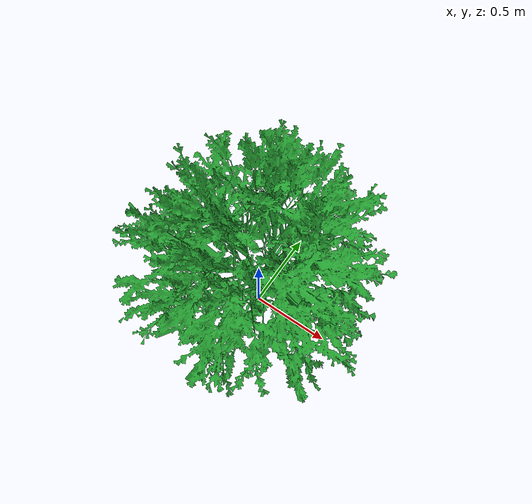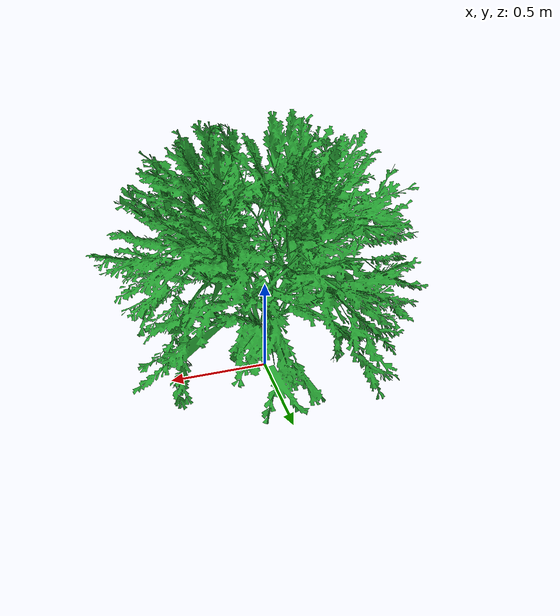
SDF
<?xml version="1.0" ?>
<sdf version="1.5">

    <model name="tree1">
      <static>true</static>
      <link name="tree">
	<visual name="body_visual">
	    <pose>0 0 0 0 0 0</pose>
	    <geometry>
	      <mesh>
		<scale>0.2 0.2 0.2</scale>
		<uri>model://tree1/meshes/tree01.stl</uri>
	      </mesh>
	    </geometry>
	    <material>
	      <script>
		<name>Gazebo/Green</name>
		<uri>file://media/materials/scripts/gazebo.material</uri>
	      </script>
	    </material>
	  </visual>
      </link>
    </model>

</sdf>
